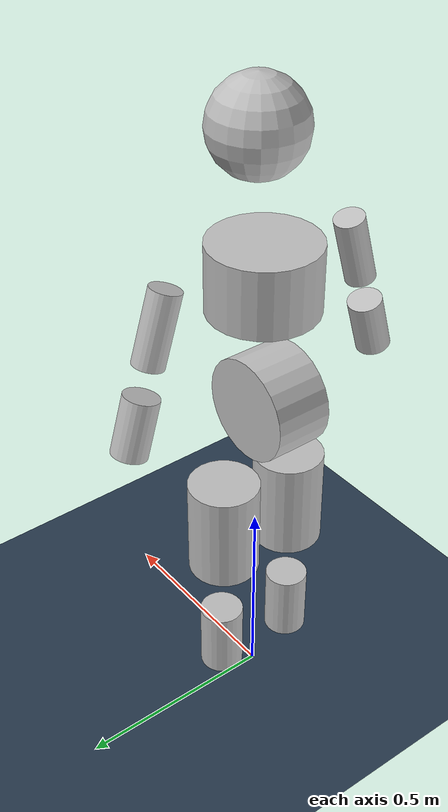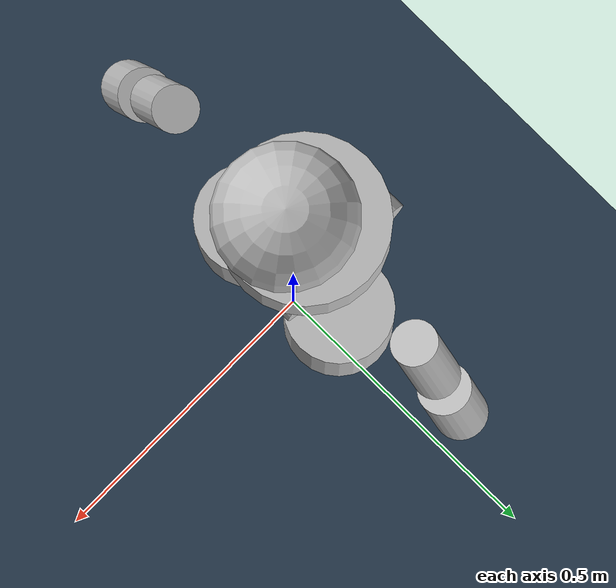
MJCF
<mujoco model="GR1T1_inspire_hand_simple_coll">
  <compiler angle="radian" meshdir="../meshes" eulerseq="zyx" autolimits="true"/>
  <option timestep='0.002' iterations='50' solver='PGS' gravity='0 0 -9.81'>
  <flag sensornoise="enable" frictionloss="enable"/>
  </option>
  <size njmax="500" nconmax="100" />

  <visual>
      <quality shadowsize='4096'/>
      <map znear='0.05'/>
  </visual>

  <default>
      <default class="GR1T1_inspire_hand_simple_coll">
          <joint limited='true'/>
      <motor ctrllimited='true'/>
      <geom  condim='4' contype="1" conaffinity="15" solref='0.001 2' friction='0.9 0.2 0.2'/>
      <equality solref='0.001 2'/>
      <default class='visualgeom'>
          <geom material='visualgeom' condim='1' contype='0' conaffinity='0'/>
      </default>
      <default class='visualgeom2'>
          <geom material='visualgeom2' condim='1' contype='0' conaffinity='0'/>
      </default>
      <default class='obstacle'>
          <geom material='obstacle' condim='3' contype='1' conaffinity='15'/>
      </default>

      <default class='neck_joint_param'>
          <joint  damping="0.01" frictionloss="0.01" armature="0.01"/>
      </default>

      <default class='waist_joint_param'>
          <joint  damping="2" frictionloss="2" armature="0.01"/>
      </default>

      <default class='leg_joint_param'>
          <joint  damping="0.01" frictionloss="0.01" armature="0.01"/>
      </default>

      <default class='arm_joint_param'>
          <joint  damping="1" frictionloss="1" armature="0.01"/>
      </default>

      <default class='finger_joint_param'>
          <joint  damping="0.00" frictionloss="0.00" armature="0.01"/>
      </default>
          <default class="visual">
              <geom type="mesh" contype="0" conaffinity="0" group="2"/>
          </default>
          <default class="collision">
              <geom group="3" mass="0" density="0"/>
              <default class="base_collision">
                  <geom type="capsule" size=".014"/>
              </default>
          </default>
          <site size="0.001" rgba="0.5 0.5 0.5 0.3" group="4"/>
      </default>
    </default>

  <asset>
    <texture type="skybox" builtin="gradient" rgb1="0.3 0.5 0.7" rgb2="0 0 0" width="512" height="512"/>
    	<texture name="texplane" type="2d" builtin="checker" rgb1=".2 .3 .4" rgb2=".1 0.15 0.2"
        width="512" height="512" mark="cross" markrgb=".8 .8 .8"/>
    	<texture name="texplane2" type="2d" builtin="checker" rgb1="1 0.3137 0.1843" rgb2="0.0 0.30196 0.38039"
        width="512" height="512" mark="cross" markrgb=".8 .8 .8"/>

   	<material name="matplane" reflectance="0." texture="texplane" texrepeat="1 1" texuniform="true"/>
   	<material name="matplane2" reflectance="0.1" texture="texplane2" texrepeat="1 1" texuniform="true"/>

  	<material name='obstacle'  rgba='0.9 0.6 0.2 1'/>
  	<material name='visualgeom'  rgba='0.5 0.9 0.2 1'/>
  	<material name='visualgeom2'  rgba='0.5 0.9 0.2 1'/>
        <mesh name="base_link" file="base_link.STL"/>
        <mesh name="left_thigh_roll_link" file="left_thigh_roll_link.STL"/>
        <mesh name="left_thigh_yaw_link" file="left_thigh_yaw_link.STL"/>
        <mesh name="left_thigh_pitch_link" file="left_thigh_pitch_link.STL"/>
        <mesh name="left_shank_pitch_link" file="left_shank_pitch_link.STL"/>
        <mesh name="left_foot_pitch_link" file="left_foot_pitch_link.STL"/>
        <mesh name="left_foot_roll_link" file="left_foot_roll_link.STL"/>
        <mesh name="right_thigh_roll_link" file="right_thigh_roll_link.STL"/>
        <mesh name="right_thigh_yaw_link" file="right_thigh_yaw_link.STL"/>
        <mesh name="right_thigh_pitch_link" file="right_thigh_pitch_link.STL"/>
        <mesh name="right_shank_pitch_link" file="right_shank_pitch_link.STL"/>
        <mesh name="right_foot_pitch_link" file="right_foot_pitch_link.STL"/>
        <mesh name="right_foot_roll_link" file="right_foot_roll_link.STL"/>
        <mesh name="waist_yaw_link" file="waist_yaw_link.STL"/>
        <mesh name="waist_pitch_link" file="waist_pitch_link.STL"/>
        <mesh name="waist_roll_link" file="waist_roll_link.STL"/>
        <mesh name="head_yaw_link" file="head_yaw_link.STL"/>
        <mesh name="head_roll_link" file="head_roll_link.STL"/>
        <mesh name="head_pitch_link" file="head_pitch_link.STL"/>
        <mesh name="left_upper_arm_pitch_link" file="left_upper_arm_pitch_link.STL"/>
        <mesh name="left_upper_arm_roll_link" file="left_upper_arm_roll_link.STL"/>
        <mesh name="left_upper_arm_yaw_link" file="left_upper_arm_yaw_link.STL"/>
        <mesh name="left_lower_arm_pitch_link" file="left_lower_arm_pitch_link.STL"/>
        <mesh name="left_hand_yaw_link" file="left_hand_yaw_link.STL"/>
        <mesh name="left_hand_roll_link" file="left_hand_roll_link.STL"/>
        <mesh name="left_hand_pitch_link" file="left_hand_pitch_link.STL"/>
        <mesh name="right_upper_arm_pitch_link" file="right_upper_arm_pitch_link.STL"/>
        <mesh name="right_upper_arm_roll_link" file="right_upper_arm_roll_link.STL"/>
        <mesh name="right_upper_arm_yaw_link" file="right_upper_arm_yaw_link.STL"/>
        <mesh name="right_lower_arm_pitch_link" file="right_lower_arm_pitch_link.STL"/>
        <mesh name="right_hand_yaw_link" file="right_hand_yaw_link.STL"/>
        <mesh name="right_hand_roll_link" file="right_hand_roll_link.STL"/>
        <mesh name="right_hand_pitch_link" file="right_hand_pitch_link.STL"/>
        <mesh name="IMU_link" file="IMU_link.STL"/>

  </asset>

  <worldbody>
        <light mode="targetbodycom" target="base_link" pos="2 0 2.5"/>
	<geom name="ground" type="plane" size="0 0 1" pos="0.001 0 0" quat="1 0 0 0" material="matplane" condim="1" conaffinity='15'/>
    <body name="base_link" pos="0 0 0.87">
      <inertial pos="-0.06584 -9.765e-05 -0.01434" quat="0.384085 0.384189 -0.593878 0.593453" mass="3.84" diaginertia="0.0357335 0.0311265 0.01048" />
      <site name='imu' size='0.01' pos='-0.0648 0 -0.1015'/>
      <freejoint/>
      <geom name="base_link.STL" size="0.122394 0.0685504" pos="-0.0425829 0.000370042 0.00921009" quat="0.706838 -0.707359 0.00477667 0" type="cylinder" rgba="0.752941 0.752941 0.752941 1" />
      <body name="left_thigh_roll_link" pos="-0.0025 0.105 -0.0276">
        <inertial pos="-0.0327 9.169e-05 0.002323" quat="-0.0333877 0.695218 -0.0328245 0.717272" mass="1.45" diaginertia="0.00250664 0.0024263 0.00154406" />
        <joint name="left_hip_roll_joint" pos="0 0 0" axis="1 0 0" range="-0.09 0.39" />
        <body name="left_thigh_yaw_link">
          <inertial pos="-0.00019288 0.03547 -0.1073" quat="0.695263 0.0885308 -0.105597 0.705422" mass="3.17" diaginertia="0.0187495 0.0155538 0.00552366" />
          <joint name="left_hip_yaw_joint" pos="0 0 0" axis="0 0 1" range="-0.7 0.7" />
          <body name="left_thigh_pitch_link" pos="0 0.0223 -0.1405">
            <inertial pos="0.001419 -0.02869 -0.05999" quat="0.563485 -0.0288779 0.0157908 0.82547" mass="7.99" diaginertia="0.0726805 0.0722025 0.021167" />
            <joint name="left_hip_pitch_joint" pos="0 0 0" axis="0 1 0" range="-1.75 0.7" />
            <geom name="left_thigh_pitch_link.STL" size="0.0858769 0.124914" pos="0.000700051 -0.0301597 -0.167056" type="cylinder" rgba="0.752941 0.752941 0.752941 1" />
            <body name="left_shank_pitch_link" pos="0 -0.0213 -0.36">
              <inertial pos="0.001724 -3.024e-05 -0.1128" quat="0.933705 -0.00658684 -0.00149886 -0.357979" mass="1.93" diaginertia="0.00991684 0.0099128 0.000948263" />
              <joint name="left_knee_pitch_joint" pos="0 0 0" axis="0 1 0" range="-0.09 1.92" />
              <geom name="left_shank_pitch_link.STL" size="0.0533214 0.090385" pos="-1.65901e-05 -0.000842547 -0.174691" quat="0.00125538 -0.202712 0.979238 0" type="cylinder" rgba="0.752941 0.752941 0.752941 1" />
              <body name="left_foot_pitch_link" pos="0 0 -0.34">
                <inertial pos="0.0284 0.00121 -0.0293" quat="0.00525623 0.735579 0.00949935 0.677352" mass="0.538" diaginertia="0.00248837 0.00231998 0.000379658" />
                <joint name="left_ankle_pitch_joint" pos="0 0 0" axis="0 1 0" range="-1.05 0.52" />
                <body name="left_foot_roll_link">
                  <inertial pos="0.0284 0.00121 -0.0293" quat="0.00525623 0.735579 0.00949935 0.677352" mass="0.538" diaginertia="0.00248837 0.00231998 0.000379658" />
                  <joint name="left_ankle_roll_joint" pos="0 0 0" axis="1 0 0" range="-0.44 0.44" />
                  <geom name="l_foot_1" size="0.02 0.12" pos="0.05 0.02 -0.035" quat="0.707105 0 0.707108 0" type="cylinder" rgba="0.752941 0.752941 0.752941 1" />
                  <geom name="l_foot_2" size="0.02 0.12" pos="0.05 -0.02 -0.035" quat="0.707105 0 0.707108 0" type="cylinder" rgba="0.752941 0.752941 0.752941 1" />
                </body>
              </body>
            </body>
          </body>
        </body>
      </body>
      <body name="right_thigh_roll_link" pos="-0.0025 -0.105 -0.0276">
        <inertial pos="-0.0325 -7.432e-05 0.002322" quat="0.0358186 0.695351 0.0278322 0.717238" mass="1.45" diaginertia="0.00252461 0.00244444 0.00154395" />
        <joint name="right_hip_roll_joint" pos="0 0 0" axis="1 0 0" range="-0.39 0.09"  />
        <body name="right_thigh_yaw_link">
          <inertial pos="-0.0001289 -0.03547 -0.1132" quat="0.707179 -0.100752 0.093415 0.693557" mass="3.17" diaginertia="0.0187501 0.0155492 0.00552367" />
          <joint name="right_hip_yaw_joint" pos="0 0 0" axis="0 0 1" range="-0.7 0.7" />
          <body name="right_thigh_pitch_link" pos="0 -0.0223 -0.1405">
            <inertial pos="0.00151 0.02868 -0.0598" quat="0.818776 0.0150828 -0.0284695 0.573208" mass="7.99" diaginertia="0.0727223 0.0722714 0.0211863" />
            <joint name="right_hip_pitch_joint" pos="0 0 0" axis="0 1 0" range="-1.75 0.7" />
            <geom name="right_thigh_pitch_link.STL" size="0.085878 0.124911" pos="-0.00212327 0.0301596 -0.167056" quat="0.999971 0.00269833 0.00706272 0" type="cylinder" rgba="0.752941 0.752941 0.752941 1" />
            <body name="right_shank_pitch_link" pos="0 0.0213 -0.36">
              <inertial pos="0.00172 3.024e-05 -0.1128" quat="0.770863 0.00710581 -0.00190153 0.636959" mass="1.93" diaginertia="0.00991496 0.00990498 0.000958362" />
              <joint name="right_knee_pitch_joint" pos="0 0 0" axis="0 1 0" range="-0.09 1.92" />
              <geom name="right_shank_pitch_link.STL" size="0.0533211 0.0903841" pos="-1.65901e-05 -0.000842557 -0.174699" type="cylinder" rgba="0.752941 0.752941 0.752941 1" />
              <body name="right_foot_pitch_link" pos="0 0 -0.34">
                <inertial pos="0.0284 -0.00121 -0.0293" quat="-0.00543913 0.735629 -0.0096842 0.677293" mass="0.538" diaginertia="0.00248439 0.00231997 0.000379631" />
                <joint name="right_ankle_pitch_joint" pos="0 0 0" axis="0 1 0" range="-1.05 0.52" />
                <body name="right_foot_roll_link">
                  <inertial pos="0.0284 -0.00121 -0.0293" quat="-0.00543913 0.735629 -0.0096842 0.677293" mass="0.538" diaginertia="0.00248439 0.00231997 0.000379631" />
                  <joint name="right_ankle_roll_joint" pos="0 0 0" axis="1 0 0" range="-0.44 0.44" />
                  <geom name="r_foot_1" size="0.02 0.12" pos="0.05 0.02 -0.035" quat="0.707105 0 0.707108 0" type="cylinder" rgba="0.752941 0.752941 0.752941 1" />
                  <geom name="r_foot_2" size="0.02 0.12" pos="0.05 -0.02 -0.035" quat="0.707105 0 0.707108 0" type="cylinder" rgba="0.752941 0.752941 0.752941 1" />
                </body>
              </body>
            </body>
          </body>
        </body>
      </body>
      <body name="waist_yaw_link">
        <inertial pos="-0.002641 -0.009332 0.05066" quat="0.967239 0.191378 -0.0307135 0.163948" mass="1.49" diaginertia="0.00303371 0.00290717 0.00146913" />
        <body name="waist_pitch_link" pos="0 0 0.0873">
          <inertial pos="0.00451 -0.00439 0.0406" quat="0.531996 0.0125456 0.0669515 0.844003" mass="1.62" diaginertia="0.0045927 0.00458165 0.00180365" />
          <body name="waist_roll_link" pos="0 0 0.081">
            <inertial pos="0.01038 -1.48e-06 0.01312" quat="0.31535 0.63338 0.631998 0.31617" mass="0.91" diaginertia="0.001226 0.00120045 0.000886551" />
            <body name="torso_link" pos="-0.00414 0 0.16071">
              <inertial pos="-0.00667 0.0001533 0.01837" quat="0.998658 0.00114289 0.0517712 0.000838218" mass="6.4" diaginertia="0.0417958 0.03127 0.0253542" />
              <geom name="torso_link.STL" size="0.127427 0.080193" pos="-0.0158159 0.00519537 -0.0125205" type="cylinder" rgba="0.752941 0.752941 0.752941 1" />
              <body name="left_upper_arm_pitch_link" pos="0 0.10111 0.047149" quat="0.976296 0.216438 0 0">
                <inertial pos="0.00323 0.05324 0.000192" quat="0.707075 0.706425 -0.0197518 -0.0248718" mass="0.81" diaginertia="0.00203012 0.001957 0.000493887" />
                <body name="left_upper_arm_roll_link" pos="0 0.09515 0" quat="0.997189 -0.0749297 0 0">
                  <inertial pos="0.003427 0.01466 -0.02316" quat="0.893873 0.258142 0.0928721 -0.354583" mass="0.5" diaginertia="0.000886251 0.000862243 0.000234106" />
                  <body name="left_upper_arm_yaw_link" pos="0 0.04 -0.07095">
                    <inertial pos="5.47e-05 0.002013 -0.0852" quat="0.999468 0.0150745 0.000700882 -0.0289205" mass="0.55" diaginertia="0.00354401 0.00353998 0.000248202" />
                    <geom name="left_upper_arm_yaw_link.STL" size="0.0362332 0.084942" pos="3.94854e-05 -0.00089429 -0.07934" quat="0.00803418 -0.995528 0.0941277 0" type="cylinder" rgba="0.752941 0.752941 0.752941 1" />
                    <body name="left_lower_arm_pitch_link" pos="0 0 -0.1751">
                      <inertial pos="3.31e-06 0.007846 -0.02549" quat="0.703002 -0.0891082 0.088925 0.699957" mass="0.32" diaginertia="0.000297331 0.0002916 9.64688e-05" />
                      <body name="left_hand_yaw_link" pos="0 5.033e-05 -0.05395">
                        <inertial pos="-2.923e-05 0.002124 -0.06117" quat="0.998548 0.00515378 -0.00372064 0.0534915" mass="0.73" diaginertia="0.00186712 0.00186313 0.00032085" />
                        <geom name="left_hand_yaw_link.STL" size="0.0415719 0.0695937" pos="0.00108925 -0.00154111 -0.0760429" type="cylinder" rgba="0.752941 0.752941 0.752941 1" />
                        <body name="left_hand_roll_link" pos="0 0 -0.18765">
                          <inertial pos="0 0.001292 -0.01174" quat="0.579981 0.404502 0.579981 0.404502" mass="0.02955" diaginertia="1.01694e-05 8.75063e-06 5.38e-06" />
                          <body name="left_hand_pitch_link">
                            <inertial pos="0 0.001292 -0.01174" quat="0.579981 0.404502 0.579981 0.404502" mass="0.02955" diaginertia="1.01694e-05 8.75063e-06 5.38e-06" />
                            <body name="left_end_effector_link">
                              <body name="L_hand_base_link" pos="0 0 -0.022">
                                <inertial pos="-0.002551 -0.066047 -0.0019357" quat="0.992433 0.118422 0.021189 0.0245586" mass="0.14143" diaginertia="0.000123583 8.41243e-05 7.6759e-05" />
                                <body name="L_thumb_proximal_base" pos="0.02045 -0.01696 -0.0691" quat="0.000796327 1 0 0">
                                  <inertial pos="-0.0048817 0.00038782 -0.00722" quat="0.445981 0.352284 0.495833 0.656617" mass="0.0018869" diaginertia="8.66031e-08 6.87331e-08 4.94199e-08" />
                                  <body name="L_thumb_proximal" pos="0.0099867 0.0098242 -0.0089" quat="0.704571 -0.704573 -0.0598169 0.0598167">
                                    <inertial pos="0.021936 -0.01279 -0.0080386" quat="0.25452 0.660687 -0.251949 0.659723" mass="0.0066101" diaginertia="2.78701e-06 2.44024e-06 8.6466e-07" />
                                    <body name="L_thumb_intermediate" pos="0.04407 -0.034553 -0.0008">
                                      <inertial pos="0.0095531 0.0016282 -0.0072002" quat="0.30738 0.636732 -0.307526 0.636803" mass="0.0037844" diaginertia="4.6532e-07 4.48114e-07 2.45646e-07" />
                                      <body name="L_thumb_distal" pos="0.020248 -0.010156 -0.0012">
                                        <inertial pos="0.0092888 -0.004953 -0.0060033" quat="0.266264 0.65596 -0.262836 0.655544" mass="0.003344" diaginertia="2.0026e-07 1.95246e-07 8.1594e-08" />
                                        <body name="L_thumb_tip" pos="0.015 -0.013 -0.004" />
                                      </body>
                                    </body>
                                  </body>
                                </body>
                                <body name="L_index_proximal" pos="0.032268 0.00028533 -0.13653" quat="0.491196 0.50865 0.491199 0.50865">
                                  <inertial pos="0.0012971 -0.011934 -0.0059998" quat="0.489677 0.510115 -0.489692 0.510099" mass="0.0042405" diaginertia="6.9402e-07 6.62904e-07 2.10916e-07" />
                                  <body name="L_index_intermediate" pos="-0.0024229 -0.032041 -0.001">
                                    <inertial pos="0.0021753 -0.019567 -0.005" quat="0.528694 0.469555 -0.528694 0.469555" mass="0.0045682" diaginertia="7.8176e-07 7.72427e-07 8.47209e-08" />
                                    <body name="L_index_tip" pos="-0.005 -0.04 -0.004" />
                                  </body>
                                </body>
                                <body name="L_middle_proximal" pos="0.01295 0.00028533 -0.1371" quat="0.499998 0.5 0.500002 0.5">
                                  <inertial pos="0.0012971 -0.011934 -0.0059999" quat="0.489677 0.510115 -0.489692 0.510099" mass="0.0042405" diaginertia="6.9402e-07 6.62904e-07 2.10916e-07" />
                                  <body name="L_middle_intermediate" pos="-0.0024229 -0.032041 -0.001">
                                    <inertial pos="0.001921 -0.020796 -0.0049999" quat="0.531603 0.466115 -0.531728 0.466262" mass="0.0050397" diaginertia="9.8385e-07 9.73288e-07 9.14016e-08" />
                                    <body name="L_middle_tip" pos="-0.005 -0.045 -0.004" />
                                  </body>
                                </body>
                                <body name="L_ring_proximal" pos="-0.0062872 0.00028533 -0.13691" quat="0.512915 0.48674 0.512919 0.48674">
                                  <inertial pos="0.0012971 -0.011934 -0.0059999" quat="0.489677 0.510114 -0.489692 0.510099" mass="0.0042405" diaginertia="6.9402e-07 6.62904e-07 2.10916e-07" />
                                  <body name="L_ring_intermediate" pos="-0.0024229 -0.032041 -0.001">
                                    <inertial pos="0.0021753 -0.019567 -0.005" quat="0.528694 0.469556 -0.528694 0.469556" mass="0.0045682" diaginertia="7.8176e-07 7.72437e-07 8.47208e-08" />
                                    <body name="L_ring_tip" pos="-0.002 -0.04 -0.004" />
                                  </body>
                                </body>
                                <body name="L_pinky_proximal" pos="-0.025488 0.00028533 -0.13571" quat="0.525481 0.473147 0.525485 0.473147">
                                  <inertial pos="0.0012971 -0.011934 -0.0059999" quat="0.489677 0.510114 -0.489692 0.510099" mass="0.0042405" diaginertia="6.9402e-07 6.62904e-07 2.10916e-07" />
                                  <body name="L_pinky_intermediate" pos="-0.0024229 -0.032041 -0.001">
                                    <inertial pos="0.0024788 -0.016208 -0.0050001" quat="0.526797 0.471683 -0.526793 0.471687" mass="0.0036036" diaginertia="4.4881e-07 4.43809e-07 6.5736e-08" />
                                    <body name="L_pinky_tip" pos="-0.002 -0.032 -0.004" />
                                  </body>
                                </body>
                              </body>
                            </body>
                          </body>
                        </body>
                      </body>
                    </body>
                  </body>
                </body>
              </body>
              <body name="right_upper_arm_pitch_link" pos="0 -0.10111 0.047149" quat="0.976296 -0.216438 0 0">
                <inertial pos="0.00324 -0.0533 0.000185" quat="0.7064 0.707006 0.0228604 0.0248708" mass="0.81" diaginertia="0.00203703 0.00196 0.000491967" />
                <body name="right_upper_arm_roll_link" pos="0 -0.09515 0" quat="0.997189 0.0749297 0 0">
                  <inertial pos="0.00342 -0.0147 -0.0232" quat="0.892464 -0.257881 0.09389 0.358036" mass="0.5" diaginertia="0.000886565 0.000862499 0.000234036" />
                  <body name="right_upper_arm_yaw_link" pos="0 -0.04 -0.07095">
                    <inertial pos="7.6e-05 -0.002032 -0.08519" quat="0.999725 -0.0150371 -4.36925e-05 -0.0179929" mass="0.55" diaginertia="0.00354301 0.00353897 0.000248224" />
                    <geom name="right_upper_arm_yaw_link.STL" size="0.0362332 0.084942" pos="3.94854e-05 0.00089429 -0.07934" type="cylinder" rgba="0.752941 0.752941 0.752941 1" />
                    <body name="right_lower_arm_pitch_link" pos="0 0 -0.1751">
                      <inertial pos="-1.69e-06 -0.007855 -0.02549" quat="0.702814 0.0890955 -0.0887771 0.700167" mass="0.32" diaginertia="0.000297199 0.0002914 9.65012e-05" />
                      <body name="right_hand_yaw_link" pos="0 -5.033e-05 -0.05395">
                        <inertial pos="3.9e-05 -0.00212 -0.06117" quat="0.998577 -0.00525175 0.0038125 0.0529257" mass="0.73" diaginertia="0.00186612 0.00186214 0.00032084" />
                        <geom name="right_hand_yaw_link.STL" size="0.0415719 0.0695937" pos="0.00108925 0.000641114 -0.0760429" type="cylinder" rgba="0.752941 0.752941 0.752941 1" />
                        <body name="right_hand_roll_link" pos="0 0 -0.18765">
                          <inertial pos="0 -0.00129 -0.0117" quat="0.404502 0.579981 0.404502 0.579981" mass="0.0295" diaginertia="1.01694e-05 8.75063e-06 5.38e-06" />
                          <body name="right_hand_pitch_link">
                            <inertial pos="0 -0.00129 -0.0117" quat="0.404502 0.579981 0.404502 0.579981" mass="0.0295" diaginertia="1.01694e-05 8.75063e-06 5.38e-06" />
                            <body name="right_end_effector_link">
                              <body name="R_hand_base_link" pos="0 0 -0.022">
                                <inertial pos="-0.0025264 -0.066047 0.0019598" quat="0.993005 -0.113528 -0.0210604 0.0246792" mass="0.14143" diaginertia="0.000122991 8.41186e-05 7.61951e-05" />
                                <body name="R_thumb_proximal_base" pos="0.02045 0.01696 -0.0691" quat="-3.67321e-06 0 1 0">
                                  <inertial pos="-0.0048064 0.0009382 -0.00757" quat="0.515015 0.680854 0.408023 0.323596" mass="0.0018869" diaginertia="8.66026e-08 6.8732e-08 4.94194e-08" />
                                  <body name="R_thumb_proximal" pos="-0.0088099 0.010892 -0.00925" quat="0.0996843 0.0996847 0.700046 0.700044">
                                    <inertial pos="0.021932 0.012785 -0.0080386" quat="-0.254474 0.660716 0.251893 0.659733" mass="0.0066075" diaginertia="2.78601e-06 2.43933e-06 8.64566e-07" />
                                    <body name="R_thumb_intermediate" pos="0.04407 0.034553 -0.0008">
                                      <inertial pos="0.0095544 -0.0016282 -0.0071997" quat="0.636718 0.307389 -0.636802 0.307548" mass="0.0037847" diaginertia="4.6531e-07 4.48089e-07 2.45661e-07" />
                                      <body name="R_thumb_distal" pos="0.020248 0.010156 -0.0012">
                                        <inertial pos="0.0092888 0.0049529 -0.0060033" quat="-0.266294 0.655967 0.262806 0.655537" mass="0.0033441" diaginertia="2.0026e-07 1.95247e-07 8.1593e-08" />
                                        <body name="R_thumb_tip" pos="0.015 0.013 -0.004" />
                                      </body>
                                    </body>
                                  </body>
                                </body>
                                <body name="R_index_proximal" pos="0.032268 0.00028533 -0.13653" quat="0.508647 -0.491199 0.491201 -0.508648">
                                  <inertial pos="0.0012259 0.011942 -0.0060001" quat="0.50867 0.49121 -0.508643 0.491172" mass="0.0042403" diaginertia="6.9398e-07 6.62871e-07 2.10909e-07" />
                                  <body name="R_index_intermediate" pos="-0.0026138 0.032026 -0.001">
                                    <inertial pos="0.0019697 0.019589 -0.005" quat="0.466773 0.531152 -0.466773 0.531153" mass="0.0045683" diaginertia="7.8179e-07 7.72465e-07 8.47212e-08" />
                                    <body name="R_index_tip" pos="-0.005 0.04 -0.004" />
                                  </body>
                                </body>
                                <body name="R_middle_proximal" pos="0.01295 0.00028533 -0.1371" quat="0.499998 -0.5 0.500002 -0.5">
                                  <inertial pos="0.001297 0.011934 -0.0060001" quat="0.510131 0.489693 -0.510105 0.489653" mass="0.0042403" diaginertia="6.9397e-07 6.62865e-07 2.10915e-07" />
                                  <body name="R_middle_intermediate" pos="-0.0024229 0.032041 -0.001">
                                    <inertial pos="0.001921 0.020796 -0.005" quat="0.466148 0.531627 -0.466229 0.531705" mass="0.0050396" diaginertia="9.8384e-07 9.73279e-07 9.14014e-08" />
                                    <body name="R_middle_tip" pos="-0.005 0.045 -0.004" />
                                  </body>
                                </body>
                                <body name="R_ring_proximal" pos="-0.0062872 0.00028533 -0.13691" quat="0.486728 -0.512927 0.512929 -0.48673">
                                  <inertial pos="0.001297 0.011934 -0.0060002" quat="0.510129 0.489691 -0.510107 0.489654" mass="0.0042403" diaginertia="6.9397e-07 6.62865e-07 2.10915e-07" />
                                  <body name="R_ring_intermediate" pos="-0.0024229 0.032041 -0.001">
                                    <inertial pos="0.0021753 0.019567 -0.005" quat="0.469554 0.528695 -0.469554 0.528695" mass="0.0045683" diaginertia="7.8177e-07 7.72448e-07 8.4722e-08" />
                                    <body name="R_ring_tip" pos="-0.002 0.04 -0.004" />
                                  </body>
                                </body>
                                <body name="R_pinky_proximal" pos="-0.025488 0.00028533 -0.13571" quat="0.47357 -0.525099 0.525101 -0.473572">
                                  <inertial pos="0.001297 0.011934 -0.0060001" quat="0.51013 0.489693 -0.510106 0.489653" mass="0.0042403" diaginertia="6.9397e-07 6.62865e-07 2.10915e-07" />
                                  <body name="R_pinky_intermediate" pos="-0.0024229 0.032041 -0.001">
                                    <inertial pos="0.0024748 0.016203 -0.0050031" quat="0.47398 0.528862 -0.469291 0.524799" mass="0.0035996" diaginertia="4.4867e-07 4.43723e-07 6.56538e-08" />
                                    <body name="R_pinky_tip" pos="-0.002 0.032 -0.004" />
                                  </body>
                                </body>
                              </body>
                            </body>
                          </body>
                        </body>
                      </body>
                    </body>
                  </body>
                </body>
              </body>
              <body name="head_yaw_link" pos="0 0 0.17339">
                <inertial pos="-0.0001367 -0.000134 0.05313" quat="0.698092 -0.00588508 -0.00754886 0.715944" mass="0.45" diaginertia="0.000769225 0.000735883 0.000168892" />
                <body name="head_roll_link" pos="0 -0.00105 0.14195">
                  <inertial pos="-3e-05 0.01418 -0.00267" quat="0.351424 0.150117 -0.834883 0.396152" mass="0.1267" diaginertia="2.08875e-05 2.00047e-05 1.56779e-05" />
                  <body name="head_pitch_link">
                    <inertial pos="0.02654 0.002225 -0.01063" quat="0.0180722 0.851262 -0.0107447 0.52432" mass="0.45" diaginertia="0.00165781 0.00141479 0.000966401" />
                    <geom name="head_pitch_link.STL" size="0.108687" pos="0.0182811 0 -0.013362" rgba="0.752941 0.752941 0.752941 1" />
                  </body>
                </body>
              </body>
            </body>
          </body>
        </body>
      </body>
      <body name="IMU_link" pos="-0.064772 0 -0.0596">
        <inertial pos="-0.0003275 0 -0.005737" quat="0 0.687028 0 0.726631" mass="0.05" diaginertia="1.44301e-05 1.199e-05 1.12099e-05" />
        <geom name="IMU_link.STL" type="mesh" rgba="0.752941 0.752941 0.752941 1" mesh="IMU_link" />
      </body>
    </body>
  </worldbody>

  <actuator>
        <!-- left leg -->
        <motor class="GR1T1_inspire_hand_simple_coll" name="left_thigh_roll_link" joint="left_hip_roll_joint" ctrlrange="-80 80"/>
        <motor class="GR1T1_inspire_hand_simple_coll" name="left_thigh_yaw_link" joint="left_hip_yaw_joint" ctrlrange="-60 60"/>
        <motor class="GR1T1_inspire_hand_simple_coll" name="left_thigh_pitch_link" joint="left_hip_pitch_joint" ctrlrange="-160 160"/>
        <motor class="GR1T1_inspire_hand_simple_coll" name="left_shank_pitch_link" joint="left_knee_pitch_joint" ctrlrange="-160 160"/>
        <motor class="GR1T1_inspire_hand_simple_coll" name="left_foot_pitch_link" joint="left_ankle_pitch_joint" ctrlrange="-16 16"/>
	    <motor class="GR1T1_inspire_hand_simple_coll" name="left_foot_roll_link" joint="left_ankle_roll_joint" ctrlrange="-16 16"/>

        <!-- right leg -->
        <motor class="GR1T1_inspire_hand_simple_coll" name="right_thigh_roll_link" joint="right_hip_roll_joint" ctrlrange="-80 80"/>
        <motor class="GR1T1_inspire_hand_simple_coll" name="right_thigh_yaw_link" joint="right_hip_yaw_joint" ctrlrange="-60 60"/>
        <motor class="GR1T1_inspire_hand_simple_coll" name="right_thigh_pitch_link" joint="right_hip_pitch_joint" ctrlrange="-160 160"/>
        <motor class="GR1T1_inspire_hand_simple_coll" name="right_shank_pitch_link" joint="right_knee_pitch_joint" ctrlrange="-160 160"/>
        <motor class="GR1T1_inspire_hand_simple_coll" name="right_foot_pitch_link" joint="right_ankle_pitch_joint" ctrlrange="-16 16"/>
	    <motor class="GR1T1_inspire_hand_simple_coll" name="right_foot_roll_link" joint="right_ankle_roll_joint" ctrlrange="-16 16"/>

    </actuator>
        <sensor>
           <actuatorpos name='left_leg_roll_joint_p'  actuator='left_thigh_roll_link' user='13'/>
           <actuatorpos name='left_leg_yaw_joint_p'  actuator='left_thigh_yaw_link' user='13'/>
           <actuatorpos name='left_leg_pitch_joint_p'  actuator='left_thigh_pitch_link' user='13'/>
           <actuatorpos name='left_knee_joint_p'  actuator='left_shank_pitch_link' user='13'/>
           <actuatorpos name='left_ankle_pitch_joint_p'  actuator='left_foot_pitch_link' user='13'/>
           <actuatorpos name='left_ankle_roll_joint_p'  actuator='left_foot_roll_link' user='13'/>
           <actuatorpos name='right_leg_roll_joint_p'  actuator='right_thigh_roll_link' user='13'/>
           <actuatorpos name='right_leg_yaw_joint_p'  actuator='right_thigh_yaw_link' user='13'/>
           <actuatorpos name='right_leg_pitch_joint_p'  actuator='right_thigh_pitch_link' user='13'/>
           <actuatorpos name='right_knee_joint_p'  actuator='right_shank_pitch_link' user='13'/>
           <actuatorpos name='right_ankle_pitch_joint_p'  actuator='right_foot_pitch_link' user='13'/>
           <actuatorpos name='right_ankle_roll_joint_p'  actuator='right_foot_roll_link' user='13'/>

           <actuatorvel name='left_leg_roll_joint_v'  actuator='left_thigh_roll_link' user='13'/>
           <actuatorvel name='left_leg_yaw_joint_v'  actuator='left_thigh_yaw_link' user='13'/>
           <actuatorvel name='left_leg_pitch_joint_v'  actuator='left_thigh_pitch_link' user='13'/>
           <actuatorvel name='left_knee_joint_v'  actuator='left_shank_pitch_link' user='13'/>
           <actuatorvel name='left_ankle_pitch_joint_v'  actuator='left_foot_pitch_link' user='13'/>
           <actuatorvel name='left_ankle_roll_joint_v'  actuator='left_foot_roll_link' user='13'/>
           <actuatorvel name='right_leg_roll_joint_v'  actuator='right_thigh_roll_link' user='13'/>
           <actuatorvel name='right_leg_yaw_joint_v'  actuator='right_thigh_yaw_link' user='13'/>
           <actuatorvel name='right_leg_pitch_joint_v'  actuator='right_thigh_pitch_link' user='13'/>
           <actuatorvel name='right_knee_joint_v'  actuator='right_shank_pitch_link' user='13'/>
           <actuatorvel name='right_ankle_pitch_joint_v'  actuator='right_foot_pitch_link' user='13'/>
           <actuatorvel name='right_ankle_roll_joint_v'  actuator='right_foot_roll_link' user='13'/>

           <actuatorfrc name='left_leg_roll_joint_f'  actuator='left_thigh_roll_link' user='13' noise='1e-3'/>
           <actuatorfrc name='left_leg_yaw_joint_f'  actuator='left_thigh_yaw_link' user='13' noise='1e-3'/>
           <actuatorfrc name='left_leg_pitch_joint_f'  actuator='left_thigh_pitch_link' user='13' noise='1e-3'/>
           <actuatorfrc name='left_knee_joint_f'  actuator='left_shank_pitch_link' user='13' noise='1e-3'/>
           <actuatorfrc name='left_ankle_pitch_joint_f'  actuator='left_foot_pitch_link' user='13' noise='1e-3'/>
           <actuatorfrc name='left_ankle_roll_joint_f'  actuator='left_foot_roll_link' user='13' noise='1e-3'/>
           <actuatorfrc name='right_leg_roll_joint_f'  actuator='right_thigh_roll_link' user='13' noise='1e-3'/>
           <actuatorfrc name='right_leg_yaw_joint_f'  actuator='right_thigh_yaw_link' user='13' noise='1e-3'/>
           <actuatorfrc name='right_leg_pitch_joint_f'  actuator='right_thigh_pitch_link' user='13' noise='1e-3'/>
           <actuatorfrc name='right_knee_joint_f'  actuator='right_shank_pitch_link' user='13' noise='1e-3'/>
           <actuatorfrc name='right_ankle_pitch_joint_f'  actuator='right_foot_pitch_link' user='13' noise='1e-3'/>
           <actuatorfrc name='right_ankle_roll_joint_f'  actuator='right_foot_roll_link' user='13' noise='1e-3'/>

       <framequat     name='orientation' objtype='site' noise='0.001' objname='imu'/>
	   <framepos     name='position' objtype='site' noise='0.001' objname='imu'/>
	   <gyro          name='angular-velocity'    site='imu' noise='0.005' cutoff='34.9'/>
	   <velocimeter   name='linear-velocity'     site='imu' noise='0.001' cutoff='30'/>
	   <accelerometer name='linear-acceleration' site='imu' noise='0.005' cutoff='157'/>
	   <magnetometer  name='magnetometer'        site='imu'/>
        </sensor>

</mujoco>
